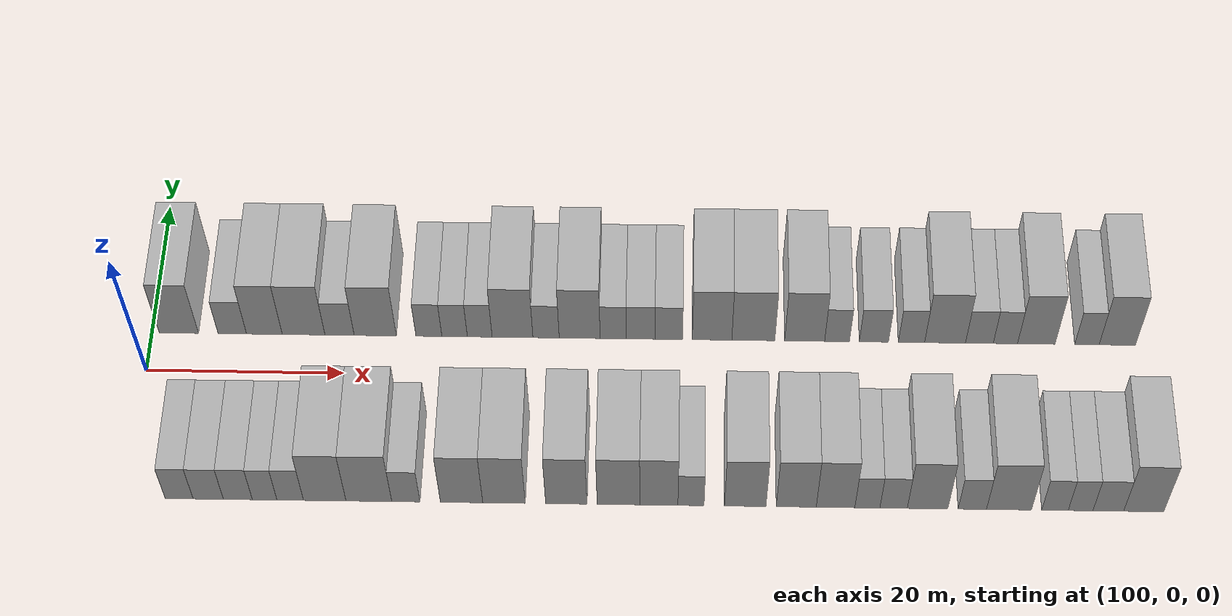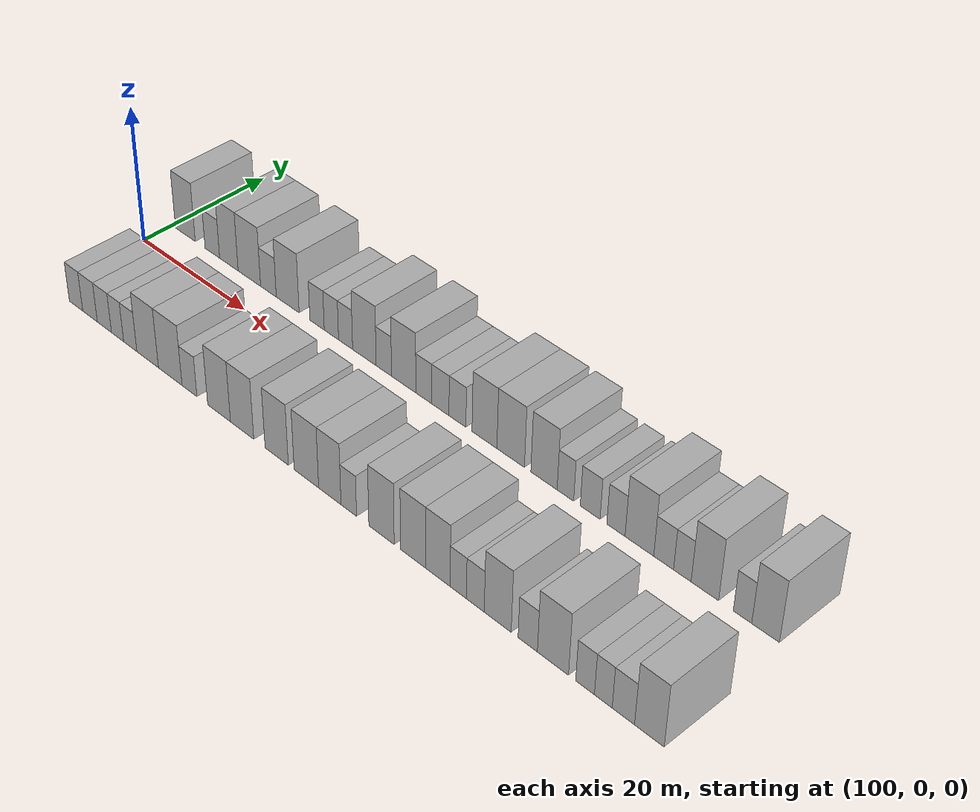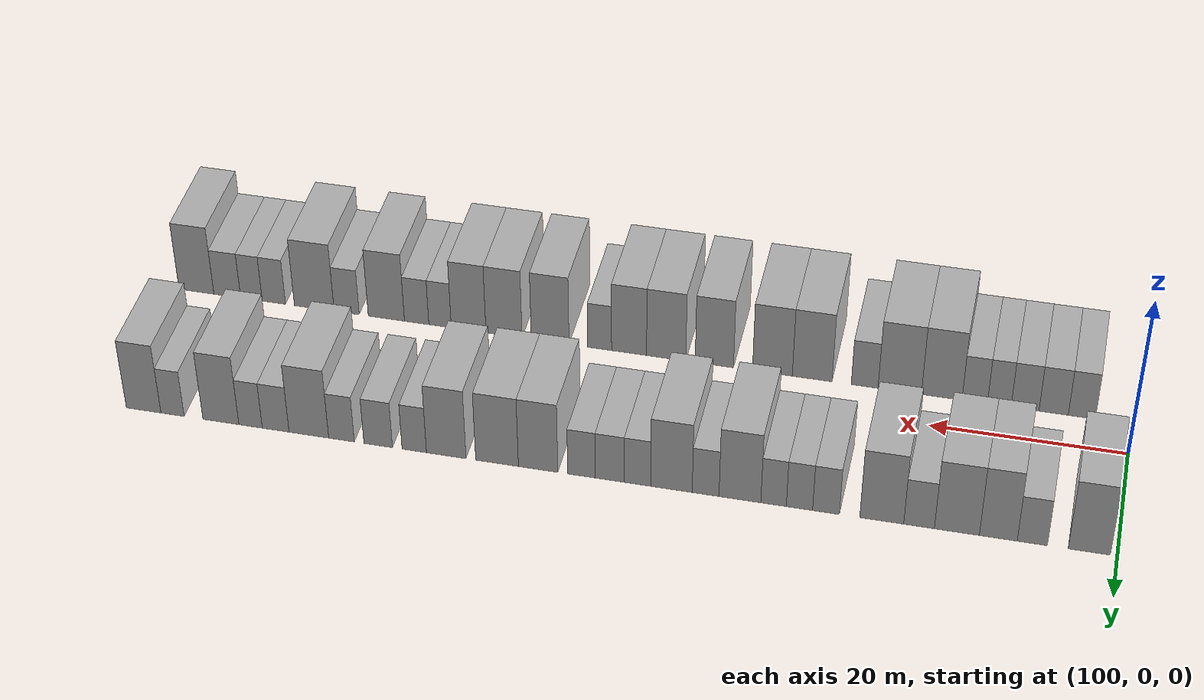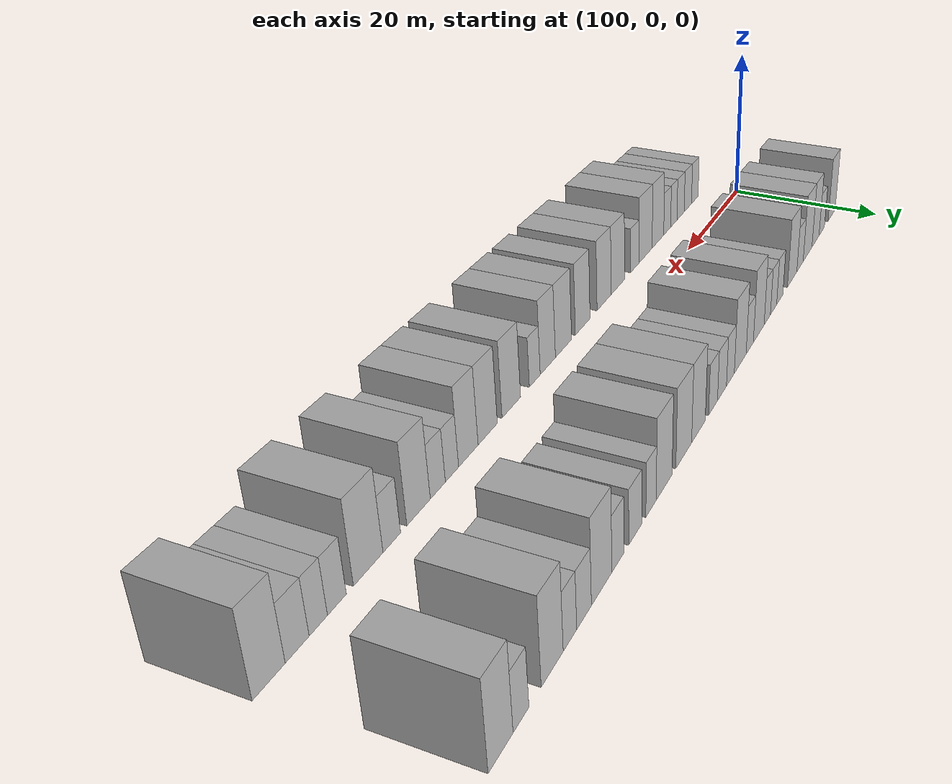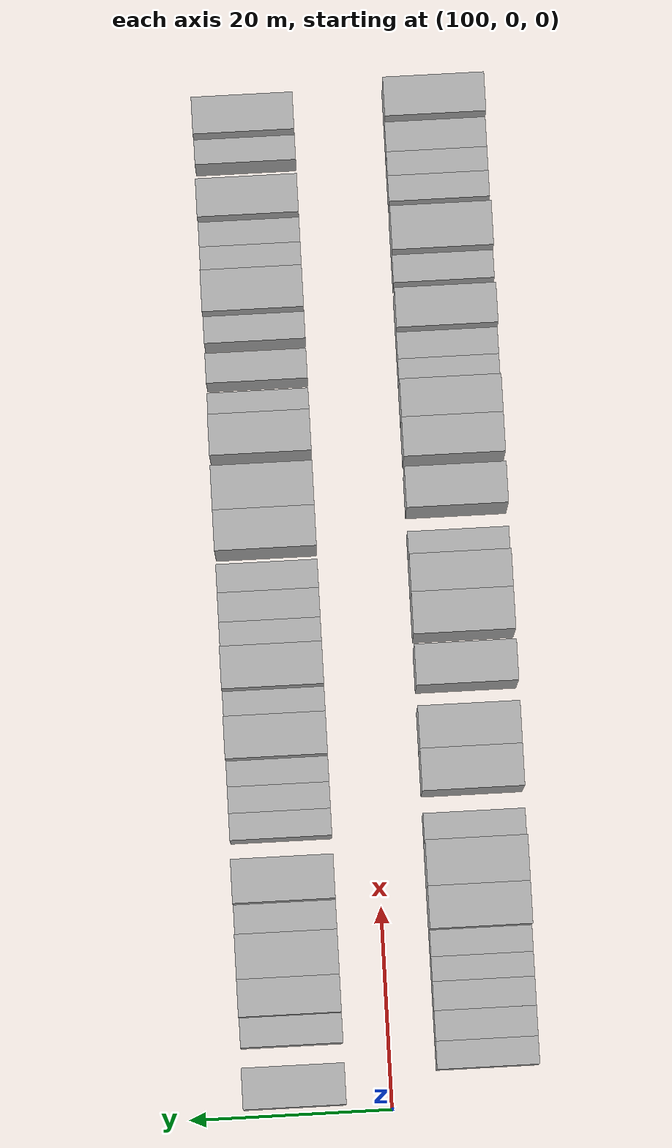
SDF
<sdf version="1.6">
 <world name="default">
  <model name="building_25">
   <static>1</static>
   <pose>102.7310 9.5000 0 0.000000 0.000000 1.570796</pose>
   <link name="link">
    <pose>0 0 4.50 0 0 0</pose>
    <collision name="collision"><geometry><box><size>10.0000 4.0255 9.0000</size></box></geometry></collision>
    <visual name="visual">
     <cast_shadows>0</cast_shadows>
     <geometry><box><size>10.0000 4.0255 9.0000</size></box></geometry>
     <material>
      <script>
       <uri>model://HANNAS_wall/materials/scripts</uri>
       <uri>model://HANNAS_wall/materials/textures</uri>
       <name>vrc/HANNAS_wall</name>
      </script>
     </material>
    </visual>
   </link>
  </model>
  <model name="building_26">
   <static>1</static>
   <pose>108.1972 9.5000 0 0.000000 0.000000 1.570796</pose>
   <link name="link">
    <pose>0 0 3.00 0 0 0</pose>
    <collision name="collision"><geometry><box><size>10.0000 2.9069 6.0000</size></box></geometry></collision>
    <visual name="visual">
     <cast_shadows>0</cast_shadows>
     <geometry><box><size>10.0000 2.9069 6.0000</size></box></geometry>
     <material>
      <script>
       <uri>model://HANNAS_wall/materials/scripts</uri>
       <uri>model://HANNAS_wall/materials/textures</uri>
       <name>vrc/HANNAS_wall</name>
      </script>
     </material>
    </visual>
   </link>
  </model>
  <model name="building_27">
   <static>1</static>
   <pose>111.4768 9.5000 0 0.000000 0.000000 1.570796</pose>
   <link name="link">
    <pose>0 0 4.50 0 0 0</pose>
    <collision name="collision"><geometry><box><size>10.0000 3.6522 9.0000</size></box></geometry></collision>
    <visual name="visual">
     <cast_shadows>0</cast_shadows>
     <geometry><box><size>10.0000 3.6522 9.0000</size></box></geometry>
     <material>
      <script>
       <uri>model://HANNAS_wall/materials/scripts</uri>
       <uri>model://HANNAS_wall/materials/textures</uri>
       <name>vrc/HANNAS_wall</name>
      </script>
     </material>
    </visual>
   </link>
  </model>
  <model name="building_28">
   <static>1</static>
   <pose>115.4859 9.5000 0 0.000000 0.000000 1.570796</pose>
   <link name="link">
    <pose>0 0 4.50 0 0 0</pose>
    <collision name="collision"><geometry><box><size>10.0000 4.3660 9.0000</size></box></geometry></collision>
    <visual name="visual">
     <cast_shadows>0</cast_shadows>
     <geometry><box><size>10.0000 4.3660 9.0000</size></box></geometry>
     <material>
      <script>
       <uri>model://HANNAS_wall/materials/scripts</uri>
       <uri>model://HANNAS_wall/materials/textures</uri>
       <name>vrc/HANNAS_wall</name>
      </script>
     </material>
    </visual>
   </link>
  </model>
  <model name="building_29">
   <static>1</static>
   <pose>119.1669 9.5000 0 0.000000 0.000000 1.570796</pose>
   <link name="link">
    <pose>0 0 3.00 0 0 0</pose>
    <collision name="collision"><geometry><box><size>10.0000 2.9960 6.0000</size></box></geometry></collision>
    <visual name="visual">
     <cast_shadows>0</cast_shadows>
     <geometry><box><size>10.0000 2.9960 6.0000</size></box></geometry>
     <material>
      <script>
       <uri>model://HANNAS_wall/materials/scripts</uri>
       <uri>model://HANNAS_wall/materials/textures</uri>
       <name>vrc/HANNAS_wall</name>
      </script>
     </material>
    </visual>
   </link>
  </model>
  <model name="building_30">
   <static>1</static>
   <pose>122.8163 9.5000 0 0.000000 0.000000 1.570796</pose>
   <link name="link">
    <pose>0 0 4.50 0 0 0</pose>
    <collision name="collision"><geometry><box><size>10.0000 4.3029 9.0000</size></box></geometry></collision>
    <visual name="visual">
     <cast_shadows>0</cast_shadows>
     <geometry><box><size>10.0000 4.3029 9.0000</size></box></geometry>
     <material>
      <script>
       <uri>model://HANNAS_wall/materials/scripts</uri>
       <uri>model://HANNAS_wall/materials/textures</uri>
       <name>vrc/HANNAS_wall</name>
      </script>
     </material>
    </visual>
   </link>
  </model>
  <model name="building_31">
   <static>1</static>
   <pose>128.2900 9.5000 0 0.000000 0.000000 1.570796</pose>
   <link name="link">
    <pose>0 0 3.00 0 0 0</pose>
    <collision name="collision"><geometry><box><size>10.0000 2.6445 6.0000</size></box></geometry></collision>
    <visual name="visual">
     <cast_shadows>0</cast_shadows>
     <geometry><box><size>10.0000 2.6445 6.0000</size></box></geometry>
     <material>
      <script>
       <uri>model://HANNAS_wall/materials/scripts</uri>
       <uri>model://HANNAS_wall/materials/textures</uri>
       <name>vrc/HANNAS_wall</name>
      </script>
     </material>
    </visual>
   </link>
  </model>
  <model name="building_32">
   <static>1</static>
   <pose>130.9138 9.5000 0 0.000000 0.000000 1.570796</pose>
   <link name="link">
    <pose>0 0 3.00 0 0 0</pose>
    <collision name="collision"><geometry><box><size>10.0000 2.6032 6.0000</size></box></geometry></collision>
    <visual name="visual">
     <cast_shadows>0</cast_shadows>
     <geometry><box><size>10.0000 2.6032 6.0000</size></box></geometry>
     <material>
      <script>
       <uri>model://HANNAS_wall/materials/scripts</uri>
       <uri>model://HANNAS_wall/materials/textures</uri>
       <name>vrc/HANNAS_wall</name>
      </script>
     </material>
    </visual>
   </link>
  </model>
  <model name="building_33">
   <static>1</static>
   <pose>133.4802 9.5000 0 0.000000 0.000000 1.570796</pose>
   <link name="link">
    <pose>0 0 3.00 0 0 0</pose>
    <collision name="collision"><geometry><box><size>10.0000 2.5295 6.0000</size></box></geometry></collision>
    <visual name="visual">
     <cast_shadows>0</cast_shadows>
     <geometry><box><size>10.0000 2.5295 6.0000</size></box></geometry>
     <material>
      <script>
       <uri>model://HANNAS_wall/materials/scripts</uri>
       <uri>model://HANNAS_wall/materials/textures</uri>
       <name>vrc/HANNAS_wall</name>
      </script>
     </material>
    </visual>
   </link>
  </model>
  <model name="building_34">
   <static>1</static>
   <pose>136.8274 9.5000 0 0.000000 0.000000 1.570796</pose>
   <link name="link">
    <pose>0 0 4.50 0 0 0</pose>
    <collision name="collision"><geometry><box><size>10.0000 4.1649 9.0000</size></box></geometry></collision>
    <visual name="visual">
     <cast_shadows>0</cast_shadows>
     <geometry><box><size>10.0000 4.1649 9.0000</size></box></geometry>
     <material>
      <script>
       <uri>model://HANNAS_wall/materials/scripts</uri>
       <uri>model://HANNAS_wall/materials/textures</uri>
       <name>vrc/HANNAS_wall</name>
      </script>
     </material>
    </visual>
   </link>
  </model>
  <model name="building_35">
   <static>1</static>
   <pose>140.2510 9.5000 0 0.000000 0.000000 1.570796</pose>
   <link name="link">
    <pose>0 0 3.00 0 0 0</pose>
    <collision name="collision"><geometry><box><size>10.0000 2.6823 6.0000</size></box></geometry></collision>
    <visual name="visual">
     <cast_shadows>0</cast_shadows>
     <geometry><box><size>10.0000 2.6823 6.0000</size></box></geometry>
     <material>
      <script>
       <uri>model://HANNAS_wall/materials/scripts</uri>
       <uri>model://HANNAS_wall/materials/textures</uri>
       <name>vrc/HANNAS_wall</name>
      </script>
     </material>
    </visual>
   </link>
  </model>
  <model name="building_36">
   <static>1</static>
   <pose>143.6813 9.5000 0 0.000000 0.000000 1.570796</pose>
   <link name="link">
    <pose>0 0 4.50 0 0 0</pose>
    <collision name="collision"><geometry><box><size>10.0000 4.1784 9.0000</size></box></geometry></collision>
    <visual name="visual">
     <cast_shadows>0</cast_shadows>
     <geometry><box><size>10.0000 4.1784 9.0000</size></box></geometry>
     <material>
      <script>
       <uri>model://HANNAS_wall/materials/scripts</uri>
       <uri>model://HANNAS_wall/materials/textures</uri>
       <name>vrc/HANNAS_wall</name>
      </script>
     </material>
    </visual>
   </link>
  </model>
  <model name="building_37">
   <static>1</static>
   <pose>147.1020 9.5000 0 0.000000 0.000000 1.570796</pose>
   <link name="link">
    <pose>0 0 3.00 0 0 0</pose>
    <collision name="collision"><geometry><box><size>10.0000 2.6631 6.0000</size></box></geometry></collision>
    <visual name="visual">
     <cast_shadows>0</cast_shadows>
     <geometry><box><size>10.0000 2.6631 6.0000</size></box></geometry>
     <material>
      <script>
       <uri>model://HANNAS_wall/materials/scripts</uri>
       <uri>model://HANNAS_wall/materials/textures</uri>
       <name>vrc/HANNAS_wall</name>
      </script>
     </material>
    </visual>
   </link>
  </model>
  <model name="building_38">
   <static>1</static>
   <pose>149.8932 9.5000 0 0.000000 0.000000 1.570796</pose>
   <link name="link">
    <pose>0 0 3.00 0 0 0</pose>
    <collision name="collision"><geometry><box><size>10.0000 2.9192 6.0000</size></box></geometry></collision>
    <visual name="visual">
     <cast_shadows>0</cast_shadows>
     <geometry><box><size>10.0000 2.9192 6.0000</size></box></geometry>
     <material>
      <script>
       <uri>model://HANNAS_wall/materials/scripts</uri>
       <uri>model://HANNAS_wall/materials/textures</uri>
       <name>vrc/HANNAS_wall</name>
      </script>
     </material>
    </visual>
   </link>
  </model>
  <model name="building_39">
   <static>1</static>
   <pose>152.7560 9.5000 0 0.000000 0.000000 1.570796</pose>
   <link name="link">
    <pose>0 0 3.00 0 0 0</pose>
    <collision name="collision"><geometry><box><size>10.0000 2.8065 6.0000</size></box></geometry></collision>
    <visual name="visual">
     <cast_shadows>0</cast_shadows>
     <geometry><box><size>10.0000 2.8065 6.0000</size></box></geometry>
     <material>
      <script>
       <uri>model://HANNAS_wall/materials/scripts</uri>
       <uri>model://HANNAS_wall/materials/textures</uri>
       <name>vrc/HANNAS_wall</name>
      </script>
     </material>
    </visual>
   </link>
  </model>
  <model name="building_40">
   <static>1</static>
   <pose>157.1732 9.5000 0 0.000000 0.000000 1.570796</pose>
   <link name="link">
    <pose>0 0 4.50 0 0 0</pose>
    <collision name="collision"><geometry><box><size>10.0000 4.0280 9.0000</size></box></geometry></collision>
    <visual name="visual">
     <cast_shadows>0</cast_shadows>
     <geometry><box><size>10.0000 4.0280 9.0000</size></box></geometry>
     <material>
      <script>
       <uri>model://HANNAS_wall/materials/scripts</uri>
       <uri>model://HANNAS_wall/materials/textures</uri>
       <name>vrc/HANNAS_wall</name>
      </script>
     </material>
    </visual>
   </link>
  </model>
  <model name="building_41">
   <static>1</static>
   <pose>161.3791 9.5000 0 0.000000 0.000000 1.570796</pose>
   <link name="link">
    <pose>0 0 4.50 0 0 0</pose>
    <collision name="collision"><geometry><box><size>10.0000 4.3838 9.0000</size></box></geometry></collision>
    <visual name="visual">
     <cast_shadows>0</cast_shadows>
     <geometry><box><size>10.0000 4.3838 9.0000</size></box></geometry>
     <material>
      <script>
       <uri>model://HANNAS_wall/materials/scripts</uri>
       <uri>model://HANNAS_wall/materials/textures</uri>
       <name>vrc/HANNAS_wall</name>
      </script>
     </material>
    </visual>
   </link>
  </model>
  <model name="building_42">
   <static>1</static>
   <pose>166.6111 9.5000 0 0.000000 0.000000 1.570796</pose>
   <link name="link">
    <pose>0 0 4.50 0 0 0</pose>
    <collision name="collision"><geometry><box><size>10.0000 4.0802 9.0000</size></box></geometry></collision>
    <visual name="visual">
     <cast_shadows>0</cast_shadows>
     <geometry><box><size>10.0000 4.0802 9.0000</size></box></geometry>
     <material>
      <script>
       <uri>model://HANNAS_wall/materials/scripts</uri>
       <uri>model://HANNAS_wall/materials/textures</uri>
       <name>vrc/HANNAS_wall</name>
      </script>
     </material>
    </visual>
   </link>
  </model>
  <model name="building_43">
   <static>1</static>
   <pose>169.9152 9.5000 0 0.000000 0.000000 1.570796</pose>
   <link name="link">
    <pose>0 0 3.00 0 0 0</pose>
    <collision name="collision"><geometry><box><size>10.0000 2.5280 6.0000</size></box></geometry></collision>
    <visual name="visual">
     <cast_shadows>0</cast_shadows>
     <geometry><box><size>10.0000 2.5280 6.0000</size></box></geometry>
     <material>
      <script>
       <uri>model://HANNAS_wall/materials/scripts</uri>
       <uri>model://HANNAS_wall/materials/textures</uri>
       <name>vrc/HANNAS_wall</name>
      </script>
     </material>
    </visual>
   </link>
  </model>
  <model name="building_44">
   <static>1</static>
   <pose>173.6654 9.5000 0 0.000000 0.000000 1.570796</pose>
   <link name="link">
    <pose>0 0 3.00 0 0 0</pose>
    <collision name="collision"><geometry><box><size>10.0000 2.9724 6.0000</size></box></geometry></collision>
    <visual name="visual">
     <cast_shadows>0</cast_shadows>
     <geometry><box><size>10.0000 2.9724 6.0000</size></box></geometry>
     <material>
      <script>
       <uri>model://HANNAS_wall/materials/scripts</uri>
       <uri>model://HANNAS_wall/materials/textures</uri>
       <name>vrc/HANNAS_wall</name>
      </script>
     </material>
    </visual>
   </link>
  </model>
  <model name="building_45">
   <static>1</static>
   <pose>177.4917 9.5000 0 0.000000 0.000000 1.570796</pose>
   <link name="link">
    <pose>0 0 3.00 0 0 0</pose>
    <collision name="collision"><geometry><box><size>10.0000 2.6803 6.0000</size></box></geometry></collision>
    <visual name="visual">
     <cast_shadows>0</cast_shadows>
     <geometry><box><size>10.0000 2.6803 6.0000</size></box></geometry>
     <material>
      <script>
       <uri>model://HANNAS_wall/materials/scripts</uri>
       <uri>model://HANNAS_wall/materials/textures</uri>
       <name>vrc/HANNAS_wall</name>
      </script>
     </material>
    </visual>
   </link>
  </model>
  <model name="building_46">
   <static>1</static>
   <pose>180.9124 9.5000 0 0.000000 0.000000 1.570796</pose>
   <link name="link">
    <pose>0 0 4.50 0 0 0</pose>
    <collision name="collision"><geometry><box><size>10.0000 4.1611 9.0000</size></box></geometry></collision>
    <visual name="visual">
     <cast_shadows>0</cast_shadows>
     <geometry><box><size>10.0000 4.1611 9.0000</size></box></geometry>
     <material>
      <script>
       <uri>model://HANNAS_wall/materials/scripts</uri>
       <uri>model://HANNAS_wall/materials/textures</uri>
       <name>vrc/HANNAS_wall</name>
      </script>
     </material>
    </visual>
   </link>
  </model>
  <model name="building_47">
   <static>1</static>
   <pose>184.4054 9.5000 0 0.000000 0.000000 1.570796</pose>
   <link name="link">
    <pose>0 0 3.00 0 0 0</pose>
    <collision name="collision"><geometry><box><size>10.0000 2.8249 6.0000</size></box></geometry></collision>
    <visual name="visual">
     <cast_shadows>0</cast_shadows>
     <geometry><box><size>10.0000 2.8249 6.0000</size></box></geometry>
     <material>
      <script>
       <uri>model://HANNAS_wall/materials/scripts</uri>
       <uri>model://HANNAS_wall/materials/textures</uri>
       <name>vrc/HANNAS_wall</name>
      </script>
     </material>
    </visual>
   </link>
  </model>
  <model name="building_48">
   <static>1</static>
   <pose>187.0541 9.5000 0 0.000000 0.000000 1.570796</pose>
   <link name="link">
    <pose>0 0 3.00 0 0 0</pose>
    <collision name="collision"><geometry><box><size>10.0000 2.4724 6.0000</size></box></geometry></collision>
    <visual name="visual">
     <cast_shadows>0</cast_shadows>
     <geometry><box><size>10.0000 2.4724 6.0000</size></box></geometry>
     <material>
      <script>
       <uri>model://HANNAS_wall/materials/scripts</uri>
       <uri>model://HANNAS_wall/materials/textures</uri>
       <name>vrc/HANNAS_wall</name>
      </script>
     </material>
    </visual>
   </link>
  </model>
  <model name="building_49">
   <static>1</static>
   <pose>190.1985 9.5000 0 0.000000 0.000000 1.570796</pose>
   <link name="link">
    <pose>0 0 4.50 0 0 0</pose>
    <collision name="collision"><geometry><box><size>10.0000 3.8163 9.0000</size></box></geometry></collision>
    <visual name="visual">
     <cast_shadows>0</cast_shadows>
     <geometry><box><size>10.0000 3.8163 9.0000</size></box></geometry>
     <material>
      <script>
       <uri>model://HANNAS_wall/materials/scripts</uri>
       <uri>model://HANNAS_wall/materials/textures</uri>
       <name>vrc/HANNAS_wall</name>
      </script>
     </material>
    </visual>
   </link>
  </model>
  <model name="building_50">
   <static>1</static>
   <pose>195.3484 9.5000 0 0.000000 0.000000 1.570796</pose>
   <link name="link">
    <pose>0 0 3.00 0 0 0</pose>
    <collision name="collision"><geometry><box><size>10.0000 2.4836 6.0000</size></box></geometry></collision>
    <visual name="visual">
     <cast_shadows>0</cast_shadows>
     <geometry><box><size>10.0000 2.4836 6.0000</size></box></geometry>
     <material>
      <script>
       <uri>model://HANNAS_wall/materials/scripts</uri>
       <uri>model://HANNAS_wall/materials/textures</uri>
       <name>vrc/HANNAS_wall</name>
      </script>
     </material>
    </visual>
   </link>
  </model>
  <model name="building_51">
   <static>1</static>
   <pose>198.4398 9.5000 0 0.000000 0.000000 1.570796</pose>
   <link name="link">
    <pose>0 0 4.50 0 0 0</pose>
    <collision name="collision"><geometry><box><size>10.0000 3.6991 9.0000</size></box></geometry></collision>
    <visual name="visual">
     <cast_shadows>0</cast_shadows>
     <geometry><box><size>10.0000 3.6991 9.0000</size></box></geometry>
     <material>
      <script>
       <uri>model://HANNAS_wall/materials/scripts</uri>
       <uri>model://HANNAS_wall/materials/textures</uri>
       <name>vrc/HANNAS_wall</name>
      </script>
     </material>
    </visual>
   </link>
  </model>
  <model name="building_80">
   <static>1</static>
   <pose>105.0120 -9.5000 0 0.000000 0.000000 1.570796</pose>
   <link name="link">
    <pose>0 0 3.00 0 0 0</pose>
    <collision name="collision"><geometry><box><size>10.0000 2.7402 6.0000</size></box></geometry></collision>
    <visual name="visual">
     <cast_shadows>0</cast_shadows>
     <geometry><box><size>10.0000 2.7402 6.0000</size></box></geometry>
     <material>
      <script>
       <uri>model://HANNAS_wall/materials/scripts</uri>
       <uri>model://HANNAS_wall/materials/textures</uri>
       <name>vrc/HANNAS_wall</name>
      </script>
     </material>
    </visual>
   </link>
  </model>
  <model name="building_81">
   <static>1</static>
   <pose>107.8663 -9.5000 0 0.000000 0.000000 1.570796</pose>
   <link name="link">
    <pose>0 0 3.00 0 0 0</pose>
    <collision name="collision"><geometry><box><size>10.0000 2.9685 6.0000</size></box></geometry></collision>
    <visual name="visual">
     <cast_shadows>0</cast_shadows>
     <geometry><box><size>10.0000 2.9685 6.0000</size></box></geometry>
     <material>
      <script>
       <uri>model://HANNAS_wall/materials/scripts</uri>
       <uri>model://HANNAS_wall/materials/textures</uri>
       <name>vrc/HANNAS_wall</name>
      </script>
     </material>
    </visual>
   </link>
  </model>
  <model name="building_82">
   <static>1</static>
   <pose>110.7672 -9.5000 0 0.000000 0.000000 1.570796</pose>
   <link name="link">
    <pose>0 0 3.00 0 0 0</pose>
    <collision name="collision"><geometry><box><size>10.0000 2.8331 6.0000</size></box></geometry></collision>
    <visual name="visual">
     <cast_shadows>0</cast_shadows>
     <geometry><box><size>10.0000 2.8331 6.0000</size></box></geometry>
     <material>
      <script>
       <uri>model://HANNAS_wall/materials/scripts</uri>
       <uri>model://HANNAS_wall/materials/textures</uri>
       <name>vrc/HANNAS_wall</name>
      </script>
     </material>
    </visual>
   </link>
  </model>
  <model name="building_83">
   <static>1</static>
   <pose>113.3900 -9.5000 0 0.000000 0.000000 1.570796</pose>
   <link name="link">
    <pose>0 0 3.00 0 0 0</pose>
    <collision name="collision"><geometry><box><size>10.0000 2.4126 6.0000</size></box></geometry></collision>
    <visual name="visual">
     <cast_shadows>0</cast_shadows>
     <geometry><box><size>10.0000 2.4126 6.0000</size></box></geometry>
     <material>
      <script>
       <uri>model://HANNAS_wall/materials/scripts</uri>
       <uri>model://HANNAS_wall/materials/textures</uri>
       <name>vrc/HANNAS_wall</name>
      </script>
     </material>
    </visual>
   </link>
  </model>
  <model name="building_84">
   <static>1</static>
   <pose>115.8952 -9.5000 0 0.000000 0.000000 1.570796</pose>
   <link name="link">
    <pose>0 0 3.00 0 0 0</pose>
    <collision name="collision"><geometry><box><size>10.0000 2.5978 6.0000</size></box></geometry></collision>
    <visual name="visual">
     <cast_shadows>0</cast_shadows>
     <geometry><box><size>10.0000 2.5978 6.0000</size></box></geometry>
     <material>
      <script>
       <uri>model://HANNAS_wall/materials/scripts</uri>
       <uri>model://HANNAS_wall/materials/textures</uri>
       <name>vrc/HANNAS_wall</name>
      </script>
     </material>
    </visual>
   </link>
  </model>
  <model name="building_85">
   <static>1</static>
   <pose>119.2780 -9.5000 0 0.000000 0.000000 1.570796</pose>
   <link name="link">
    <pose>0 0 4.50 0 0 0</pose>
    <collision name="collision"><geometry><box><size>10.0000 4.1677 9.0000</size></box></geometry></collision>
    <visual name="visual">
     <cast_shadows>0</cast_shadows>
     <geometry><box><size>10.0000 4.1677 9.0000</size></box></geometry>
     <material>
      <script>
       <uri>model://HANNAS_wall/materials/scripts</uri>
       <uri>model://HANNAS_wall/materials/textures</uri>
       <name>vrc/HANNAS_wall</name>
      </script>
     </material>
    </visual>
   </link>
  </model>
  <model name="building_86">
   <static>1</static>
   <pose>123.6017 -9.5000 0 0.000000 0.000000 1.570796</pose>
   <link name="link">
    <pose>0 0 4.50 0 0 0</pose>
    <collision name="collision"><geometry><box><size>10.0000 4.4798 9.0000</size></box></geometry></collision>
    <visual name="visual">
     <cast_shadows>0</cast_shadows>
     <geometry><box><size>10.0000 4.4798 9.0000</size></box></geometry>
     <material>
      <script>
       <uri>model://HANNAS_wall/materials/scripts</uri>
       <uri>model://HANNAS_wall/materials/textures</uri>
       <name>vrc/HANNAS_wall</name>
      </script>
     </material>
    </visual>
   </link>
  </model>
  <model name="building_87">
   <static>1</static>
   <pose>127.2268 -9.5000 0 0.000000 0.000000 1.570796</pose>
   <link name="link">
    <pose>0 0 3.00 0 0 0</pose>
    <collision name="collision"><geometry><box><size>10.0000 2.7704 6.0000</size></box></geometry></collision>
    <visual name="visual">
     <cast_shadows>0</cast_shadows>
     <geometry><box><size>10.0000 2.7704 6.0000</size></box></geometry>
     <material>
      <script>
       <uri>model://HANNAS_wall/materials/scripts</uri>
       <uri>model://HANNAS_wall/materials/textures</uri>
       <name>vrc/HANNAS_wall</name>
      </script>
     </material>
    </visual>
   </link>
  </model>
  <model name="building_88">
   <static>1</static>
   <pose>132.6841 -9.5000 0 0.000000 0.000000 1.570796</pose>
   <link name="link">
    <pose>0 0 4.50 0 0 0</pose>
    <collision name="collision"><geometry><box><size>10.0000 4.1442 9.0000</size></box></geometry></collision>
    <visual name="visual">
     <cast_shadows>0</cast_shadows>
     <geometry><box><size>10.0000 4.1442 9.0000</size></box></geometry>
     <material>
      <script>
       <uri>model://HANNAS_wall/materials/scripts</uri>
       <uri>model://HANNAS_wall/materials/textures</uri>
       <name>vrc/HANNAS_wall</name>
      </script>
     </material>
    </visual>
   </link>
  </model>
  <model name="building_89">
   <static>1</static>
   <pose>136.8383 -9.5000 0 0.000000 0.000000 1.570796</pose>
   <link name="link">
    <pose>0 0 4.50 0 0 0</pose>
    <collision name="collision"><geometry><box><size>10.0000 4.1642 9.0000</size></box></geometry></collision>
    <visual name="visual">
     <cast_shadows>0</cast_shadows>
     <geometry><box><size>10.0000 4.1642 9.0000</size></box></geometry>
     <material>
      <script>
       <uri>model://HANNAS_wall/materials/scripts</uri>
       <uri>model://HANNAS_wall/materials/textures</uri>
       <name>vrc/HANNAS_wall</name>
      </script>
     </material>
    </visual>
   </link>
  </model>
  <model name="building_90">
   <static>1</static>
   <pose>142.9406 -9.5000 0 0.000000 0.000000 1.570796</pose>
   <link name="link">
    <pose>0 0 4.50 0 0 0</pose>
    <collision name="collision"><geometry><box><size>10.0000 4.0405 9.0000</size></box></geometry></collision>
    <visual name="visual">
     <cast_shadows>0</cast_shadows>
     <geometry><box><size>10.0000 4.0405 9.0000</size></box></geometry>
     <material>
      <script>
       <uri>model://HANNAS_wall/materials/scripts</uri>
       <uri>model://HANNAS_wall/materials/textures</uri>
       <name>vrc/HANNAS_wall</name>
      </script>
     </material>
    </visual>
   </link>
  </model>
  <model name="building_91">
   <static>1</static>
   <pose>148.0404 -9.5000 0 0.000000 0.000000 1.570796</pose>
   <link name="link">
    <pose>0 0 4.50 0 0 0</pose>
    <collision name="collision"><geometry><box><size>10.0000 4.1589 9.0000</size></box></geometry></collision>
    <visual name="visual">
     <cast_shadows>0</cast_shadows>
     <geometry><box><size>10.0000 4.1589 9.0000</size></box></geometry>
     <material>
      <script>
       <uri>model://HANNAS_wall/materials/scripts</uri>
       <uri>model://HANNAS_wall/materials/textures</uri>
       <name>vrc/HANNAS_wall</name>
      </script>
     </material>
    </visual>
   </link>
  </model>
  <model name="building_92">
   <static>1</static>
   <pose>151.9837 -9.5000 0 0.000000 0.000000 1.570796</pose>
   <link name="link">
    <pose>0 0 4.50 0 0 0</pose>
    <collision name="collision"><geometry><box><size>10.0000 3.7278 9.0000</size></box></geometry></collision>
    <visual name="visual">
     <cast_shadows>0</cast_shadows>
     <geometry><box><size>10.0000 3.7278 9.0000</size></box></geometry>
     <material>
      <script>
       <uri>model://HANNAS_wall/materials/scripts</uri>
       <uri>model://HANNAS_wall/materials/textures</uri>
       <name>vrc/HANNAS_wall</name>
      </script>
     </material>
    </visual>
   </link>
  </model>
  <model name="building_93">
   <static>1</static>
   <pose>155.1243 -9.5000 0 0.000000 0.000000 1.570796</pose>
   <link name="link">
    <pose>0 0 3.00 0 0 0</pose>
    <collision name="collision"><geometry><box><size>10.0000 2.5535 6.0000</size></box></geometry></collision>
    <visual name="visual">
     <cast_shadows>0</cast_shadows>
     <geometry><box><size>10.0000 2.5535 6.0000</size></box></geometry>
     <material>
      <script>
       <uri>model://HANNAS_wall/materials/scripts</uri>
       <uri>model://HANNAS_wall/materials/textures</uri>
       <name>vrc/HANNAS_wall</name>
      </script>
     </material>
    </visual>
   </link>
  </model>
  <model name="building_94">
   <static>1</static>
   <pose>160.4299 -9.5000 0 0.000000 0.000000 1.570796</pose>
   <link name="link">
    <pose>0 0 4.50 0 0 0</pose>
    <collision name="collision"><geometry><box><size>10.0000 4.0576 9.0000</size></box></geometry></collision>
    <visual name="visual">
     <cast_shadows>0</cast_shadows>
     <geometry><box><size>10.0000 4.0576 9.0000</size></box></geometry>
     <material>
      <script>
       <uri>model://HANNAS_wall/materials/scripts</uri>
       <uri>model://HANNAS_wall/materials/textures</uri>
       <name>vrc/HANNAS_wall</name>
      </script>
     </material>
    </visual>
   </link>
  </model>
  <model name="building_95">
   <static>1</static>
   <pose>165.4143 -9.5000 0 0.000000 0.000000 1.570796</pose>
   <link name="link">
    <pose>0 0 4.50 0 0 0</pose>
    <collision name="collision"><geometry><box><size>10.0000 3.9113 9.0000</size></box></geometry></collision>
    <visual name="visual">
     <cast_shadows>0</cast_shadows>
     <geometry><box><size>10.0000 3.9113 9.0000</size></box></geometry>
     <material>
      <script>
       <uri>model://HANNAS_wall/materials/scripts</uri>
       <uri>model://HANNAS_wall/materials/textures</uri>
       <name>vrc/HANNAS_wall</name>
      </script>
     </material>
    </visual>
   </link>
  </model>
  <model name="building_96">
   <static>1</static>
   <pose>169.2551 -9.5000 0 0.000000 0.000000 1.570796</pose>
   <link name="link">
    <pose>0 0 4.50 0 0 0</pose>
    <collision name="collision"><geometry><box><size>10.0000 3.7702 9.0000</size></box></geometry></collision>
    <visual name="visual">
     <cast_shadows>0</cast_shadows>
     <geometry><box><size>10.0000 3.7702 9.0000</size></box></geometry>
     <material>
      <script>
       <uri>model://HANNAS_wall/materials/scripts</uri>
       <uri>model://HANNAS_wall/materials/textures</uri>
       <name>vrc/HANNAS_wall</name>
      </script>
     </material>
    </visual>
   </link>
  </model>
  <model name="building_97">
   <static>1</static>
   <pose>172.3638 -9.5000 0 0.000000 0.000000 1.570796</pose>
   <link name="link">
    <pose>0 0 3.00 0 0 0</pose>
    <collision name="collision"><geometry><box><size>10.0000 2.4473 6.0000</size></box></geometry></collision>
    <visual name="visual">
     <cast_shadows>0</cast_shadows>
     <geometry><box><size>10.0000 2.4473 6.0000</size></box></geometry>
     <material>
      <script>
       <uri>model://HANNAS_wall/materials/scripts</uri>
       <uri>model://HANNAS_wall/materials/textures</uri>
       <name>vrc/HANNAS_wall</name>
      </script>
     </material>
    </visual>
   </link>
  </model>
  <model name="building_98">
   <static>1</static>
   <pose>174.9214 -9.5000 0 0.000000 0.000000 1.570796</pose>
   <link name="link">
    <pose>0 0 3.00 0 0 0</pose>
    <collision name="collision"><geometry><box><size>10.0000 2.6679 6.0000</size></box></geometry></collision>
    <visual name="visual">
     <cast_shadows>0</cast_shadows>
     <geometry><box><size>10.0000 2.6679 6.0000</size></box></geometry>
     <material>
      <script>
       <uri>model://HANNAS_wall/materials/scripts</uri>
       <uri>model://HANNAS_wall/materials/textures</uri>
       <name>vrc/HANNAS_wall</name>
      </script>
     </material>
    </visual>
   </link>
  </model>
  <model name="building_99">
   <static>1</static>
   <pose>178.2393 -9.5000 0 0.000000 0.000000 1.570796</pose>
   <link name="link">
    <pose>0 0 4.50 0 0 0</pose>
    <collision name="collision"><geometry><box><size>10.0000 3.9678 9.0000</size></box></geometry></collision>
    <visual name="visual">
     <cast_shadows>0</cast_shadows>
     <geometry><box><size>10.0000 3.9678 9.0000</size></box></geometry>
     <material>
      <script>
       <uri>model://HANNAS_wall/materials/scripts</uri>
       <uri>model://HANNAS_wall/materials/textures</uri>
       <name>vrc/HANNAS_wall</name>
      </script>
     </material>
    </visual>
   </link>
  </model>
  <model name="building_100">
   <static>1</static>
   <pose>182.6089 -9.5000 0 0.000000 0.000000 1.570796</pose>
   <link name="link">
    <pose>0 0 3.00 0 0 0</pose>
    <collision name="collision"><geometry><box><size>10.0000 2.7715 6.0000</size></box></geometry></collision>
    <visual name="visual">
     <cast_shadows>0</cast_shadows>
     <geometry><box><size>10.0000 2.7715 6.0000</size></box></geometry>
     <material>
      <script>
       <uri>model://HANNAS_wall/materials/scripts</uri>
       <uri>model://HANNAS_wall/materials/textures</uri>
       <name>vrc/HANNAS_wall</name>
      </script>
     </material>
    </visual>
   </link>
  </model>
  <model name="building_101">
   <static>1</static>
   <pose>186.1894 -9.5000 0 0.000000 0.000000 1.570796</pose>
   <link name="link">
    <pose>0 0 4.50 0 0 0</pose>
    <collision name="collision"><geometry><box><size>10.0000 4.3895 9.0000</size></box></geometry></collision>
    <visual name="visual">
     <cast_shadows>0</cast_shadows>
     <geometry><box><size>10.0000 4.3895 9.0000</size></box></geometry>
     <material>
      <script>
       <uri>model://HANNAS_wall/materials/scripts</uri>
       <uri>model://HANNAS_wall/materials/textures</uri>
       <name>vrc/HANNAS_wall</name>
      </script>
     </material>
    </visual>
   </link>
  </model>
  <model name="building_102">
   <static>1</static>
   <pose>190.6777 -9.5000 0 0.000000 0.000000 1.570796</pose>
   <link name="link">
    <pose>0 0 3.00 0 0 0</pose>
    <collision name="collision"><geometry><box><size>10.0000 2.5871 6.0000</size></box></geometry></collision>
    <visual name="visual">
     <cast_shadows>0</cast_shadows>
     <geometry><box><size>10.0000 2.5871 6.0000</size></box></geometry>
     <material>
      <script>
       <uri>model://HANNAS_wall/materials/scripts</uri>
       <uri>model://HANNAS_wall/materials/textures</uri>
       <name>vrc/HANNAS_wall</name>
      </script>
     </material>
    </visual>
   </link>
  </model>
  <model name="building_103">
   <static>1</static>
   <pose>193.1760 -9.5000 0 0.000000 0.000000 1.570796</pose>
   <link name="link">
    <pose>0 0 3.00 0 0 0</pose>
    <collision name="collision"><geometry><box><size>10.0000 2.4095 6.0000</size></box></geometry></collision>
    <visual name="visual">
     <cast_shadows>0</cast_shadows>
     <geometry><box><size>10.0000 2.4095 6.0000</size></box></geometry>
     <material>
      <script>
       <uri>model://HANNAS_wall/materials/scripts</uri>
       <uri>model://HANNAS_wall/materials/textures</uri>
       <name>vrc/HANNAS_wall</name>
      </script>
     </material>
    </visual>
   </link>
  </model>
  <model name="building_104">
   <static>1</static>
   <pose>195.8806 -9.5000 0 0.000000 0.000000 1.570796</pose>
   <link name="link">
    <pose>0 0 3.00 0 0 0</pose>
    <collision name="collision"><geometry><box><size>10.0000 2.9999 6.0000</size></box></geometry></collision>
    <visual name="visual">
     <cast_shadows>0</cast_shadows>
     <geometry><box><size>10.0000 2.9999 6.0000</size></box></geometry>
     <material>
      <script>
       <uri>model://HANNAS_wall/materials/scripts</uri>
       <uri>model://HANNAS_wall/materials/textures</uri>
       <name>vrc/HANNAS_wall</name>
      </script>
     </material>
    </visual>
   </link>
  </model>
  <model name="building_105">
   <static>1</static>
   <pose>199.3344 -9.5000 0 0.000000 0.000000 1.570796</pose>
   <link name="link">
    <pose>0 0 4.50 0 0 0</pose>
    <collision name="collision"><geometry><box><size>10.0000 3.9077 9.0000</size></box></geometry></collision>
    <visual name="visual">
     <cast_shadows>0</cast_shadows>
     <geometry><box><size>10.0000 3.9077 9.0000</size></box></geometry>
     <material>
      <script>
       <uri>model://HANNAS_wall/materials/scripts</uri>
       <uri>model://HANNAS_wall/materials/textures</uri>
       <name>vrc/HANNAS_wall</name>
      </script>
     </material>
    </visual>
   </link>
  </model>
 </world>
</sdf>
